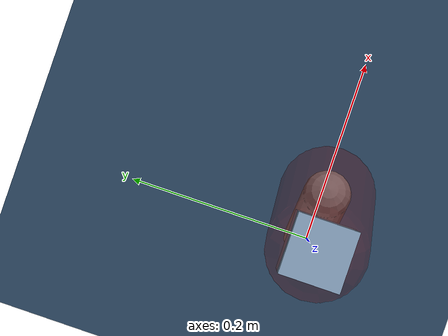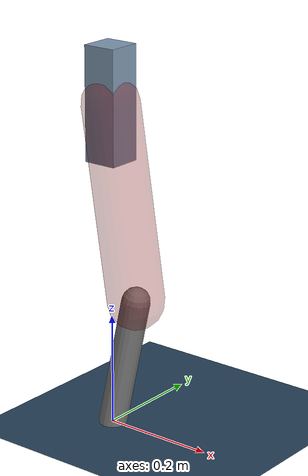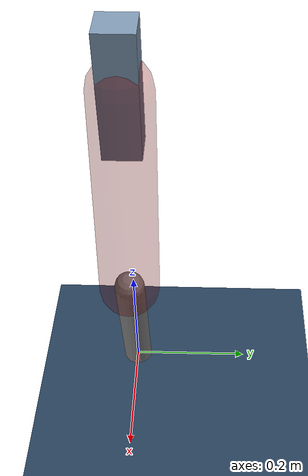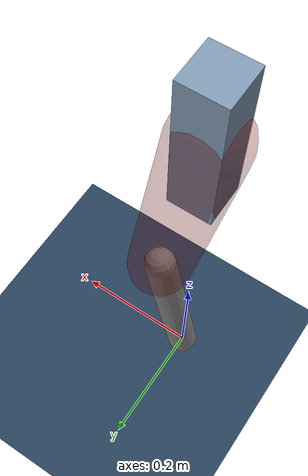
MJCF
<mujoco model="Hopper2D">
	<compiler inertiafromgeom="true" angle="radian" />
	<option timestep="0.001" integrator="implicit" cone="elliptic" solver="Newton" tolerance="1e-10" />

	<default>
		<geom contype="1" conaffinity="1" condim="3" friction="2 0.005 0.0001" solref="0.005 1" />
		<joint limited="true" damping="0.1" />
	</default>

	<asset>
		<texture name="skybox" type="skybox" builtin="gradient" rgb1=".4 .6 .8" rgb2="0 0 0" width="800" height="800" />
		<texture name="grid" type="2d" builtin="checker" rgb1=".1 .2 .3" rgb2=".2 .3 .4" width="300" height="300" mark="edge" markrgb=".2 .3 .4" />
		<material name="ground" texture="grid" texrepeat="1 1" texuniform="true" reflectance="0.1" />
		<material name="leg" rgba="0.5 0.6 0.7 1" />
	</asset>

	<worldbody>

		<geom name="floor" type="plane" size="5 5 0.25" material="ground" />

		<light directional="false" diffuse="0.8 0.8 0.8" specular="0.3 0.3 0.3" pos="0 0 2" dir="0 0 -1" />
		<light mode="targetbodycom" target="base" directional="false" diffuse="0.8 0.8 0.8" specular="0.3 0.3 0.3" pos="0 0 2" dir="0 0 -1" />

		<camera name="fixed" pos="0 -2 1" xyaxes="1 0 0 0 0 1" />
		<camera name="tracking" mode="trackcom" pos="0 -3 1" />

		<body name="root" pos="0 0 0.5811308650660104">
			<joint name="slide_x" type="slide" axis="1 0 0" range="-100 100" />
			<joint name="slide_z" type="slide" axis="0 0 1" range="0 10" />

			<body name="base" pos="0 0 0">
				<geom name="torso" type="box" size="0.03 0.03 0.1" mass="2.098" material="leg" />

				<body name="link1" pos="0 0 0" euler="0 1.415164743733933 0">
					<joint type="hinge" axis="0 -1 0" pos="0 0 0" name="hinge1" limited="true" range="-3.14 3.14" stiffness="0" damping="0.1" />
					<geom name="thigh" type="capsule" fromto="0 0 0 0.34430394505353945 0 0" size="0.05" rgba="0.5 0 0 0.3" mass="1.1106510461499104" />

					<body name="link2" pos="0.34430394505353945 0 0" euler="0 0.3735711373322329 0">
						<joint type="hinge" axis="0 -1 0" pos="0 0 0" name="hinge2" limited="true" range="-3.14 3.14" stiffness="0" damping="0.1" />
						<geom name="shank" type="capsule" fromto="0 0 0 0.24682692001247097 0 0" size="0.025" mass="0.43994422801122385" />

					</body>
				</body>
			</body>
		</body>
	</worldbody>

	<actuator>
		<motor name="torque1" joint="hinge1" ctrlrange="-62.22897043630653 62.22897043630653" ctrllimited="true" gear="1" />
		<motor name="torque2" joint="hinge2" ctrlrange="-120.60120311054641 120.60120311054641" ctrllimited="true" gear="1" />
	</actuator>
</mujoco>
